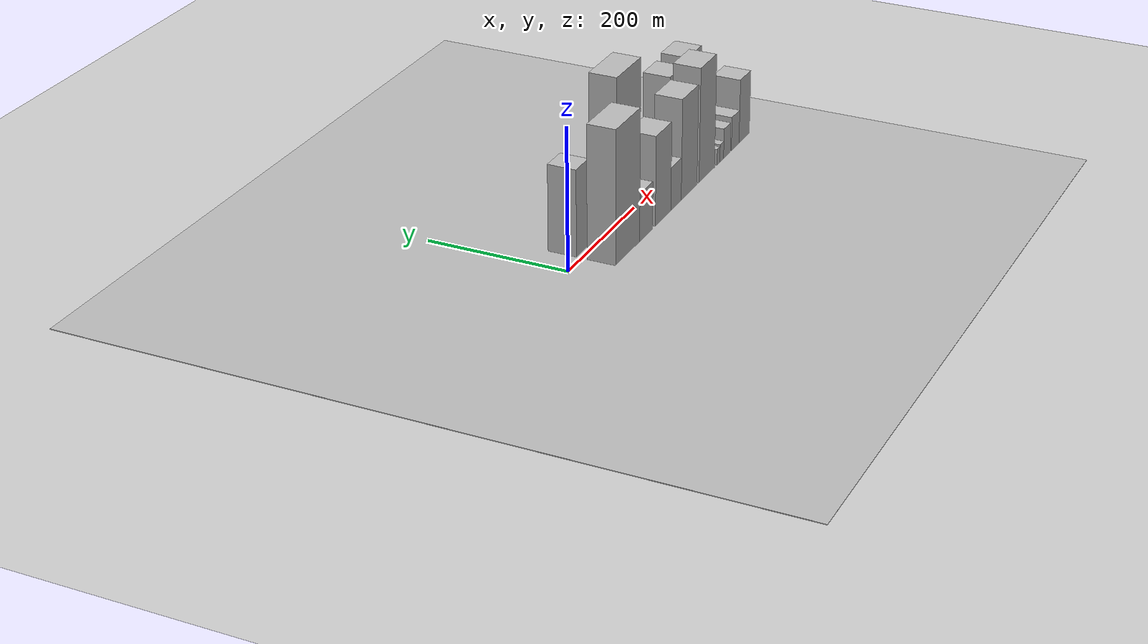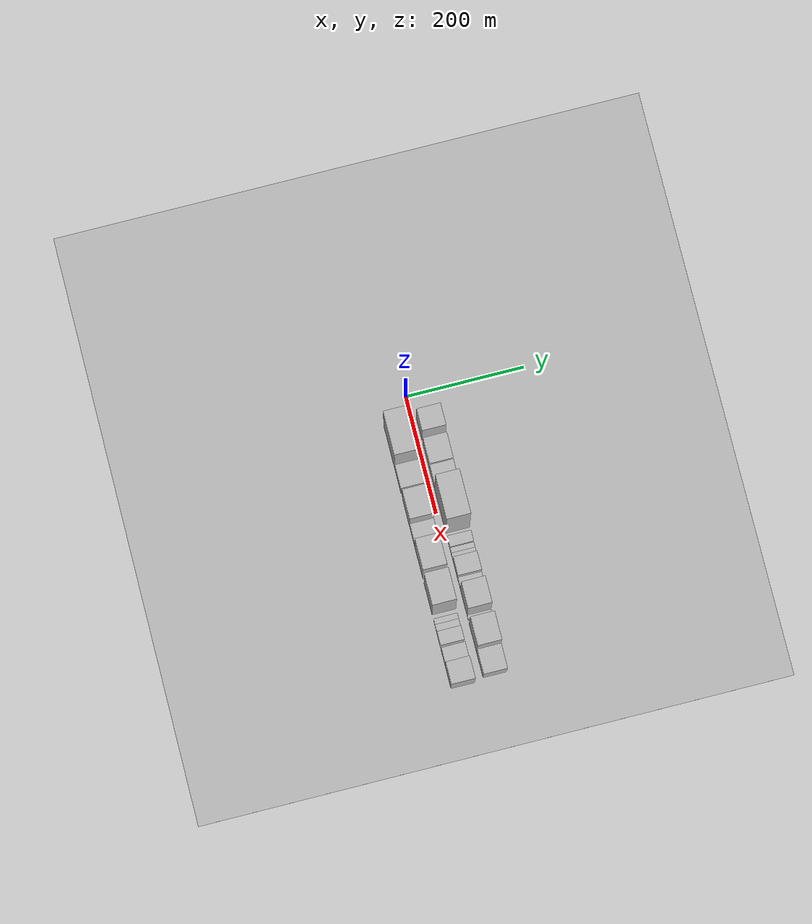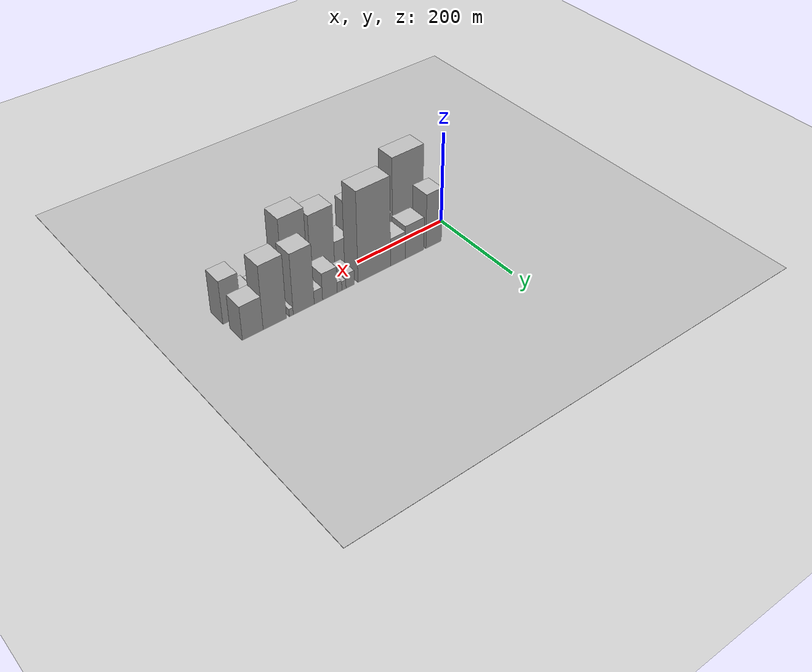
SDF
<?xml version="1.0" encoding="utf-8"?>

<sdf version="1.6">

   <world name="default">

      <gui fullscreen="0">

         <camera name="user_camera">

            <pose>-15 0 4.57585 0 0 0</pose>

            <view_controller>orbit</view_controller>

         </camera>

      </gui>

      <scene>

         <sky>

           <clouds>

             <speed>12</speed>

           </clouds>

         </sky>

         <ambient>0.4 0.4 0.4 1</ambient>

         <background>0.7 0.7 0.7 1</background>

         <shadows>1</shadows>

      </scene>

      <gravity>0 0 -9.8066</gravity>

      <magnetic_field>6e-06 2.3e-05 -4.2e-05</magnetic_field>

      <physics default="0" name="default_physics" type="ode">

         <ode>

            <solver>

               <type>quick</type>

               <iters>10</iters>

               <sor>1.0</sor>

               <use_dynamic_moi_rescaling>0</use_dynamic_moi_rescaling>

            </solver>

            <constraints>

               <cfm>0</cfm>

               <erp>0.2</erp>

               <contact_max_correcting_vel>100</contact_max_correcting_vel>

               <contact_surface_layer>0.001</contact_surface_layer>

            </constraints>

         </ode>

         <max_step_size>0.004</max_step_size>

         <real_time_factor>1</real_time_factor>

         <real_time_update_rate>250</real_time_update_rate>

      </physics>

      <light name="sun" type="directional">

         <cast_shadows>1</cast_shadows>

         <pose>0 0 10 0 0 0</pose>

         <diffuse>0.8 0.8 0.8 1</diffuse>

         <specular>0.2 0.2 0.2 1</specular>

         <attenuation>

            <range>1000</range>

            <constant>0.9</constant>

            <linear>0.01</linear>

            <quadratic>0.001</quadratic>

         </attenuation>

         <direction>-0.5 0.1 -0.9</direction>

      </light>

      <include>

         <name>ground_plane_1</name>

         <uri>model://HANNAS_ground_plane</uri>

         <pose>0 0 0  0 0 0</pose>

      </include>

      <include>

         <name>ground_plane_2</name>

         <uri>model://HANNAS_ground_plane</uri>

         <pose>100 0 0  0 0 0</pose>

      </include>

      <model name="building_1">

         <static>1</static>

         <pose frame="">58.5910 27.5000 0 0.000000 0.000000 1.570796</pose>

         <link name="link">

            <pose frame="">0 0 61.50 0 0 0</pose>

            <collision name="collision">

               <geometry>

                  <box>

                     <size>40.0000 37.1820 123.0000</size>

                  </box>

               </geometry>

               <max_contacts>10</max_contacts>

               <surface>

                  <contact>

                     <ode/>

                  </contact>

                  <bounce/>

                  <friction>

                     <torsional>

                        <ode/>

                     </torsional>

                     <ode/>

                  </friction>

               </surface>

            </collision>

            <visual name="visual">

               <cast_shadows>0</cast_shadows>

               <geometry>

                  <box>

                     <size>40.0000 37.1820 123.0000</size>

                  </box>

               </geometry>

               <material>

                  <script>

                     <uri>model://HANNAS_wall/materials/scripts</uri>

                     <uri>model://HANNAS_wall/materials/textures</uri>

                     <name>vrc/HANNAS_wall</name>

                  </script>

               </material>

            </visual>

            <self_collide>0</self_collide>

            <enable_wind>0</enable_wind>

            <kinematic>0</kinematic>

         </link>

      </model>

      <model name="building_2">

         <static>1</static>

         <pose frame="">104.1878 27.5000 0 0.000000 0.000000 1.570796</pose>

         <link name="link">

            <pose frame="">0 0 37.50 0 0 0</pose>

            <collision name="collision">

               <geometry>

                  <box>

                     <size>40.0000 44.0116 75.0000</size>

                  </box>

               </geometry>

               <max_contacts>10</max_contacts>

               <surface>

                  <contact>

                     <ode/>

                  </contact>

                  <bounce/>

                  <friction>

                     <torsional>

                        <ode/>

                     </torsional>

                     <ode/>

                  </friction>

               </surface>

            </collision>

            <visual name="visual">

               <cast_shadows>0</cast_shadows>

               <geometry>

                  <box>

                     <size>40.0000 44.0116 75.0000</size>

                  </box>

               </geometry>

               <material>

                  <script>

                     <uri>model://HANNAS_wall/materials/scripts</uri>

                     <uri>model://HANNAS_wall/materials/textures</uri>

                     <name>vrc/HANNAS_wall</name>

                  </script>

               </material>

            </visual>

            <self_collide>0</self_collide>

            <enable_wind>0</enable_wind>

            <kinematic>0</kinematic>

         </link>

      </model>

      <model name="building_3">

         <static>1</static>

         <pose frame="">143.5479 27.5000 0 0.000000 0.000000 1.570796</pose>

         <link name="link">

            <pose frame="">0 0 31.50 0 0 0</pose>

            <collision name="collision">

               <geometry>

                  <box>

                     <size>40.0000 34.7087 63.0000</size>

                  </box>

               </geometry>

               <max_contacts>10</max_contacts>

               <surface>

                  <contact>

                     <ode/>

                  </contact>

                  <bounce/>

                  <friction>

                     <torsional>

                        <ode/>

                     </torsional>

                     <ode/>

                  </friction>

               </surface>

            </collision>

            <visual name="visual">

               <cast_shadows>0</cast_shadows>

               <geometry>

                  <box>

                     <size>40.0000 34.7087 63.0000</size>

                  </box>

               </geometry>

               <material>

                  <script>

                     <uri>model://HANNAS_wall/materials/scripts</uri>

                     <uri>model://HANNAS_wall/materials/textures</uri>

                     <name>vrc/HANNAS_wall</name>

                  </script>

               </material>

            </visual>

            <self_collide>0</self_collide>

            <enable_wind>0</enable_wind>

            <kinematic>0</kinematic>

         </link>

      </model>

      <model name="building_4">

         <static>1</static>

         <pose frame="">197.8656 27.5000 0 0.000000 0.000000 1.570796</pose>

         <link name="link">

            <pose frame="">0 0 100.50 0 0 0</pose>

            <collision name="collision">

               <geometry>

                  <box>

                     <size>40.0000 73.9267 201.0000</size>

                  </box>

               </geometry>

               <max_contacts>10</max_contacts>

               <surface>

                  <contact>

                     <ode/>

                  </contact>

                  <bounce/>

                  <friction>

                     <torsional>

                        <ode/>

                     </torsional>

                     <ode/>

                  </friction>

               </surface>

            </collision>

            <visual name="visual">

               <cast_shadows>0</cast_shadows>

               <geometry>

                  <box>

                     <size>40.0000 73.9267 201.0000</size>

                  </box>

               </geometry>

               <material>

                  <script>

                     <uri>model://HANNAS_wall/materials/scripts</uri>

                     <uri>model://HANNAS_wall/materials/textures</uri>

                     <name>vrc/HANNAS_wall</name>

                  </script>

               </material>

            </visual>

            <self_collide>0</self_collide>

            <enable_wind>0</enable_wind>

            <kinematic>0</kinematic>

         </link>

      </model>

      <model name="building_5">

         <static>1</static>

         <pose frame="">252.2206 27.5000 0 0.000000 0.000000 1.570796</pose>

         <link name="link">

            <pose frame="">0 0 16.50 0 0 0</pose>

            <collision name="collision">

               <geometry>

                  <box>

                     <size>40.0000 18.7832 33.0000</size>

                  </box>

               </geometry>

               <max_contacts>10</max_contacts>

               <surface>

                  <contact>

                     <ode/>

                  </contact>

                  <bounce/>

                  <friction>

                     <torsional>

                        <ode/>

                     </torsional>

                     <ode/>

                  </friction>

               </surface>

            </collision>

            <visual name="visual">

               <cast_shadows>0</cast_shadows>

               <geometry>

                  <box>

                     <size>40.0000 18.7832 33.0000</size>

                  </box>

               </geometry>

               <material>

                  <script>

                     <uri>model://HANNAS_wall/materials/scripts</uri>

                     <uri>model://HANNAS_wall/materials/textures</uri>

                     <name>vrc/HANNAS_wall</name>

                  </script>

               </material>

            </visual>

            <self_collide>0</self_collide>

            <enable_wind>0</enable_wind>

            <kinematic>0</kinematic>

         </link>

      </model>

      <model name="building_6">

         <static>1</static>

         <pose frame="">266.1803 27.5000 0 0.000000 0.000000 1.570796</pose>

         <link name="link">

            <pose frame="">0 0 10.50 0 0 0</pose>

            <collision name="collision">

               <geometry>

                  <box>

                     <size>40.0000 9.1361 21.0000</size>

                  </box>

               </geometry>

               <max_contacts>10</max_contacts>

               <surface>

                  <contact>

                     <ode/>

                  </contact>

                  <bounce/>

                  <friction>

                     <torsional>

                        <ode/>

                     </torsional>

                     <ode/>

                  </friction>

               </surface>

            </collision>

            <visual name="visual">

               <cast_shadows>0</cast_shadows>

               <geometry>

                  <box>

                     <size>40.0000 9.1361 21.0000</size>

                  </box>

               </geometry>

               <material>

                  <script>

                     <uri>model://HANNAS_wall/materials/scripts</uri>

                     <uri>model://HANNAS_wall/materials/textures</uri>

                     <name>vrc/HANNAS_wall</name>

                  </script>

               </material>

            </visual>

            <self_collide>0</self_collide>

            <enable_wind>0</enable_wind>

            <kinematic>0</kinematic>

         </link>

      </model>

      <model name="building_7">

         <static>1</static>

         <pose frame="">275.8593 27.5000 0 0.000000 0.000000 1.570796</pose>

         <link name="link">

            <pose frame="">0 0 12.00 0 0 0</pose>

            <collision name="collision">

               <geometry>

                  <box>

                     <size>40.0000 10.2219 24.0000</size>

                  </box>

               </geometry>

               <max_contacts>10</max_contacts>

               <surface>

                  <contact>

                     <ode/>

                  </contact>

                  <bounce/>

                  <friction>

                     <torsional>

                        <ode/>

                     </torsional>

                     <ode/>

                  </friction>

               </surface>

            </collision>

            <visual name="visual">

               <cast_shadows>0</cast_shadows>

               <geometry>

                  <box>

                     <size>40.0000 10.2219 24.0000</size>

                  </box>

               </geometry>

               <material>

                  <script>

                     <uri>model://HANNAS_wall/materials/scripts</uri>

                     <uri>model://HANNAS_wall/materials/textures</uri>

                     <name>vrc/HANNAS_wall</name>

                  </script>

               </material>

            </visual>

            <self_collide>0</self_collide>

            <enable_wind>0</enable_wind>

            <kinematic>0</kinematic>

         </link>

      </model>

      <model name="building_8">

         <static>1</static>

         <pose frame="">296.8819 27.5000 0 0.000000 0.000000 1.570796</pose>

         <link name="link">

            <pose frame="">0 0 30.00 0 0 0</pose>

            <collision name="collision">

               <geometry>

                  <box>

                     <size>40.0000 31.8234 60.0000</size>

                  </box>

               </geometry>

               <max_contacts>10</max_contacts>

               <surface>

                  <contact>

                     <ode/>

                  </contact>

                  <bounce/>

                  <friction>

                     <torsional>

                        <ode/>

                     </torsional>

                     <ode/>

                  </friction>

               </surface>

            </collision>

            <visual name="visual">

               <cast_shadows>0</cast_shadows>

               <geometry>

                  <box>

                     <size>40.0000 31.8234 60.0000</size>

                  </box>

               </geometry>

               <material>

                  <script>

                     <uri>model://HANNAS_wall/materials/scripts</uri>

                     <uri>model://HANNAS_wall/materials/textures</uri>

                     <name>vrc/HANNAS_wall</name>

                  </script>

               </material>

            </visual>

            <self_collide>0</self_collide>

            <enable_wind>0</enable_wind>

            <kinematic>0</kinematic>

         </link>

      </model>

      <model name="building_9">

         <static>1</static>

         <pose frame="">321.7833 27.5000 0 0.000000 0.000000 1.570796</pose>

         <link name="link">

            <pose frame="">0 0 15.00 0 0 0</pose>

            <collision name="collision">

               <geometry>

                  <box>

                     <size>40.0000 17.9794 30.0000</size>

                  </box>

               </geometry>

               <max_contacts>10</max_contacts>

               <surface>

                  <contact>

                     <ode/>

                  </contact>

                  <bounce/>

                  <friction>

                     <torsional>

                        <ode/>

                     </torsional>

                     <ode/>

                  </friction>

               </surface>

            </collision>

            <visual name="visual">

               <cast_shadows>0</cast_shadows>

               <geometry>

                  <box>

                     <size>40.0000 17.9794 30.0000</size>

                  </box>

               </geometry>

               <material>

                  <script>

                     <uri>model://HANNAS_wall/materials/scripts</uri>

                     <uri>model://HANNAS_wall/materials/textures</uri>

                     <name>vrc/HANNAS_wall</name>

                  </script>

               </material>

            </visual>

            <self_collide>0</self_collide>

            <enable_wind>0</enable_wind>

            <kinematic>0</kinematic>

         </link>

      </model>

      <model name="building_10">

         <static>1</static>

         <pose frame="">352.9895 27.5000 0 0.000000 0.000000 1.570796</pose>

         <link name="link">

            <pose frame="">0 0 67.50 0 0 0</pose>

            <collision name="collision">

               <geometry>

                  <box>

                     <size>40.0000 44.4329 135.0000</size>

                  </box>

               </geometry>

               <max_contacts>10</max_contacts>

               <surface>

                  <contact>

                     <ode/>

                  </contact>

                  <bounce/>

                  <friction>

                     <torsional>

                        <ode/>

                     </torsional>

                     <ode/>

                  </friction>

               </surface>

            </collision>

            <visual name="visual">

               <cast_shadows>0</cast_shadows>

               <geometry>

                  <box>

                     <size>40.0000 44.4329 135.0000</size>

                  </box>

               </geometry>

               <material>

                  <script>

                     <uri>model://HANNAS_wall/materials/scripts</uri>

                     <uri>model://HANNAS_wall/materials/textures</uri>

                     <name>vrc/HANNAS_wall</name>

                  </script>

               </material>

            </visual>

            <self_collide>0</self_collide>

            <enable_wind>0</enable_wind>

            <kinematic>0</kinematic>

         </link>

      </model>

      <model name="building_11">

         <static>1</static>

         <pose frame="">379.2676 27.5000 0 0.000000 0.000000 1.570796</pose>

         <link name="link">

            <pose frame="">0 0 9.00 0 0 0</pose>

            <collision name="collision">

               <geometry>

                  <box>

                     <size>40.0000 8.1234 18.0000</size>

                  </box>

               </geometry>

               <max_contacts>10</max_contacts>

               <surface>

                  <contact>

                     <ode/>

                  </contact>

                  <bounce/>

                  <friction>

                     <torsional>

                        <ode/>

                     </torsional>

                     <ode/>

                  </friction>

               </surface>

            </collision>

            <visual name="visual">

               <cast_shadows>0</cast_shadows>

               <geometry>

                  <box>

                     <size>40.0000 8.1234 18.0000</size>

                  </box>

               </geometry>

               <material>

                  <script>

                     <uri>model://HANNAS_wall/materials/scripts</uri>

                     <uri>model://HANNAS_wall/materials/textures</uri>

                     <name>vrc/HANNAS_wall</name>

                  </script>

               </material>

            </visual>

            <self_collide>0</self_collide>

            <enable_wind>0</enable_wind>

            <kinematic>0</kinematic>

         </link>

      </model>

      <model name="building_12">

         <static>1</static>

         <pose frame="">413.3480 27.5000 0 0.000000 0.000000 1.570796</pose>

         <link name="link">

            <pose frame="">0 0 70.50 0 0 0</pose>

            <collision name="collision">

               <geometry>

                  <box>

                     <size>40.0000 48.0373 141.0000</size>

                  </box>

               </geometry>

               <max_contacts>10</max_contacts>

               <surface>

                  <contact>

                     <ode/>

                  </contact>

                  <bounce/>

                  <friction>

                     <torsional>

                        <ode/>

                     </torsional>

                     <ode/>

                  </friction>

               </surface>

            </collision>

            <visual name="visual">

               <cast_shadows>0</cast_shadows>

               <geometry>

                  <box>

                     <size>40.0000 48.0373 141.0000</size>

                  </box>

               </geometry>

               <material>

                  <script>

                     <uri>model://HANNAS_wall/materials/scripts</uri>

                     <uri>model://HANNAS_wall/materials/textures</uri>

                     <name>vrc/HANNAS_wall</name>

                  </script>

               </material>

            </visual>

            <self_collide>0</self_collide>

            <enable_wind>0</enable_wind>

            <kinematic>0</kinematic>

         </link>

      </model>

      <model name="building_13">

         <static>1</static>

         <pose frame="">458.3385 27.5000 0 0.000000 0.000000 1.570796</pose>

         <link name="link">

            <pose frame="">0 0 37.50 0 0 0</pose>

            <collision name="collision">

               <geometry>

                  <box>

                     <size>40.0000 41.9438 75.0000</size>

                  </box>

               </geometry>

               <max_contacts>10</max_contacts>

               <surface>

                  <contact>

                     <ode/>

                  </contact>

                  <bounce/>

                  <friction>

                     <torsional>

                        <ode/>

                     </torsional>

                     <ode/>

                  </friction>

               </surface>

            </collision>

            <visual name="visual">

               <cast_shadows>0</cast_shadows>

               <geometry>

                  <box>

                     <size>40.0000 41.9438 75.0000</size>

                  </box>

               </geometry>

               <material>

                  <script>

                     <uri>model://HANNAS_wall/materials/scripts</uri>

                     <uri>model://HANNAS_wall/materials/textures</uri>

                     <name>vrc/HANNAS_wall</name>

                  </script>

               </material>

            </visual>

            <self_collide>0</self_collide>

            <enable_wind>0</enable_wind>

            <kinematic>0</kinematic>

         </link>

      </model>

      <model name="building_14">

         <static>1</static>

         <pose frame="">76.5968 -27.5000 0 0.000000 0.000000 1.570796</pose>

         <link name="link">

            <pose frame="">0 0 94.50 0 0 0</pose>

            <collision name="collision">

               <geometry>

                  <box>

                     <size>40.0000 73.1936 189.0000</size>

                  </box>

               </geometry>

               <max_contacts>10</max_contacts>

               <surface>

                  <contact>

                     <ode/>

                  </contact>

                  <bounce/>

                  <friction>

                     <torsional>

                        <ode/>

                     </torsional>

                     <ode/>

                  </friction>

               </surface>

            </collision>

            <visual name="visual">

               <cast_shadows>0</cast_shadows>

               <geometry>

                  <box>

                     <size>40.0000 73.1936 189.0000</size>

                  </box>

               </geometry>

               <material>

                  <script>

                     <uri>model://HANNAS_wall/materials/scripts</uri>

                     <uri>model://HANNAS_wall/materials/textures</uri>

                     <name>vrc/HANNAS_wall</name>

                  </script>

               </material>

            </visual>

            <self_collide>0</self_collide>

            <enable_wind>0</enable_wind>

            <kinematic>0</kinematic>

         </link>

      </model>

      <model name="building_15">

         <static>1</static>

         <pose frame="">133.2956 -27.5000 0 0.000000 0.000000 1.570796</pose>

         <link name="link">

            <pose frame="">0 0 34.50 0 0 0</pose>

            <collision name="collision">

               <geometry>

                  <box>

                     <size>40.0000 40.2040 69.0000</size>

                  </box>

               </geometry>

               <max_contacts>10</max_contacts>

               <surface>

                  <contact>

                     <ode/>

                  </contact>

                  <bounce/>

                  <friction>

                     <torsional>

                        <ode/>

                     </torsional>

                     <ode/>

                  </friction>

               </surface>

            </collision>

            <visual name="visual">

               <cast_shadows>0</cast_shadows>

               <geometry>

                  <box>

                     <size>40.0000 40.2040 69.0000</size>

                  </box>

               </geometry>

               <material>

                  <script>

                     <uri>model://HANNAS_wall/materials/scripts</uri>

                     <uri>model://HANNAS_wall/materials/textures</uri>

                     <name>vrc/HANNAS_wall</name>

                  </script>

               </material>

            </visual>

            <self_collide>0</self_collide>

            <enable_wind>0</enable_wind>

            <kinematic>0</kinematic>

         </link>

      </model>

      <model name="building_16">

         <static>1</static>

         <pose frame="">187.2038 -27.5000 0 0.000000 0.000000 1.570796</pose>

         <link name="link">

            <pose frame="">0 0 64.50 0 0 0</pose>

            <collision name="collision">

               <geometry>

                  <box>

                     <size>40.0000 49.6124 129.0000</size>

                  </box>

               </geometry>

               <max_contacts>10</max_contacts>

               <surface>

                  <contact>

                     <ode/>

                  </contact>

                  <bounce/>

                  <friction>

                     <torsional>

                        <ode/>

                     </torsional>

                     <ode/>

                  </friction>

               </surface>

            </collision>

            <visual name="visual">

               <cast_shadows>0</cast_shadows>

               <geometry>

                  <box>

                     <size>40.0000 49.6124 129.0000</size>

                  </box>

               </geometry>

               <material>

                  <script>

                     <uri>model://HANNAS_wall/materials/scripts</uri>

                     <uri>model://HANNAS_wall/materials/textures</uri>

                     <name>vrc/HANNAS_wall</name>

                  </script>

               </material>

            </visual>

            <self_collide>0</self_collide>

            <enable_wind>0</enable_wind>

            <kinematic>0</kinematic>

         </link>

      </model>

      <model name="building_17">

         <static>1</static>

         <pose frame="">229.1055 -27.5000 0 0.000000 0.000000 1.570796</pose>

         <link name="link">

            <pose frame="">0 0 31.50 0 0 0</pose>

            <collision name="collision">

               <geometry>

                  <box>

                     <size>40.0000 34.1910 63.0000</size>

                  </box>

               </geometry>

               <max_contacts>10</max_contacts>

               <surface>

                  <contact>

                     <ode/>

                  </contact>

                  <bounce/>

                  <friction>

                     <torsional>

                        <ode/>

                     </torsional>

                     <ode/>

                  </friction>

               </surface>

            </collision>

            <visual name="visual">

               <cast_shadows>0</cast_shadows>

               <geometry>

                  <box>

                     <size>40.0000 34.1910 63.0000</size>

                  </box>

               </geometry>

               <material>

                  <script>

                     <uri>model://HANNAS_wall/materials/scripts</uri>

                     <uri>model://HANNAS_wall/materials/textures</uri>

                     <name>vrc/HANNAS_wall</name>

                  </script>

               </material>

            </visual>

            <self_collide>0</self_collide>

            <enable_wind>0</enable_wind>

            <kinematic>0</kinematic>

         </link>

      </model>

      <model name="building_18">

         <static>1</static>

         <pose frame="">272.4776 -27.5000 0 0.000000 0.000000 1.570796</pose>

         <link name="link">

            <pose frame="">0 0 73.50 0 0 0</pose>

            <collision name="collision">

               <geometry>

                  <box>

                     <size>40.0000 52.5531 147.0000</size>

                  </box>

               </geometry>

               <max_contacts>10</max_contacts>

               <surface>

                  <contact>

                     <ode/>

                  </contact>

                  <bounce/>

                  <friction>

                     <torsional>

                        <ode/>

                     </torsional>

                     <ode/>

                  </friction>

               </surface>

            </collision>

            <visual name="visual">

               <cast_shadows>0</cast_shadows>

               <geometry>

                  <box>

                     <size>40.0000 52.5531 147.0000</size>

                  </box>

               </geometry>

               <material>

                  <script>

                     <uri>model://HANNAS_wall/materials/scripts</uri>

                     <uri>model://HANNAS_wall/materials/textures</uri>

                     <name>vrc/HANNAS_wall</name>

                  </script>

               </material>

            </visual>

            <self_collide>0</self_collide>

            <enable_wind>0</enable_wind>

            <kinematic>0</kinematic>

         </link>

      </model>

      <model name="building_19">

         <static>1</static>

         <pose frame="">332.4324 -27.5000 0 0.000000 0.000000 1.570796</pose>

         <link name="link">

            <pose frame="">0 0 84.00 0 0 0</pose>

            <collision name="collision">

               <geometry>

                  <box>

                     <size>40.0000 53.3566 168.0000</size>

                  </box>

               </geometry>

               <max_contacts>10</max_contacts>

               <surface>

                  <contact>

                     <ode/>

                  </contact>

                  <bounce/>

                  <friction>

                     <torsional>

                        <ode/>

                     </torsional>

                     <ode/>

                  </friction>

               </surface>

            </collision>

            <visual name="visual">

               <cast_shadows>0</cast_shadows>

               <geometry>

                  <box>

                     <size>40.0000 53.3566 168.0000</size>

                  </box>

               </geometry>

               <material>

                  <script>

                     <uri>model://HANNAS_wall/materials/scripts</uri>

                     <uri>model://HANNAS_wall/materials/textures</uri>

                     <name>vrc/HANNAS_wall</name>

                  </script>

               </material>

            </visual>

            <self_collide>0</self_collide>

            <enable_wind>0</enable_wind>

            <kinematic>0</kinematic>

         </link>

      </model>

      <model name="building_20">

         <static>1</static>

         <pose frame="">373.0162 -27.5000 0 0.000000 0.000000 1.570796</pose>

         <link name="link">

            <pose frame="">0 0 12.00 0 0 0</pose>

            <collision name="collision">

               <geometry>

                  <box>

                     <size>40.0000 9.8111 24.0000</size>

                  </box>

               </geometry>

               <max_contacts>10</max_contacts>

               <surface>

                  <contact>

                     <ode/>

                  </contact>

                  <bounce/>

                  <friction>

                     <torsional>

                        <ode/>

                     </torsional>

                     <ode/>

                  </friction>

               </surface>

            </collision>

            <visual name="visual">

               <cast_shadows>0</cast_shadows>

               <geometry>

                  <box>

                     <size>40.0000 9.8111 24.0000</size>

                  </box>

               </geometry>

               <material>

                  <script>

                     <uri>model://HANNAS_wall/materials/scripts</uri>

                     <uri>model://HANNAS_wall/materials/textures</uri>

                     <name>vrc/HANNAS_wall</name>

                  </script>

               </material>

            </visual>

            <self_collide>0</self_collide>

            <enable_wind>0</enable_wind>

            <kinematic>0</kinematic>

         </link>

      </model>

      <model name="building_21">

         <static>1</static>

         <pose frame="">384.4811 -27.5000 0 0.000000 0.000000 1.570796</pose>

         <link name="link">

            <pose frame="">0 0 13.50 0 0 0</pose>

            <collision name="collision">

               <geometry>

                  <box>

                     <size>40.0000 13.1187 27.0000</size>

                  </box>

               </geometry>

               <max_contacts>10</max_contacts>

               <surface>

                  <contact>

                     <ode/>

                  </contact>

                  <bounce/>

                  <friction>

                     <torsional>

                        <ode/>

                     </torsional>

                     <ode/>

                  </friction>

               </surface>

            </collision>

            <visual name="visual">

               <cast_shadows>0</cast_shadows>

               <geometry>

                  <box>

                     <size>40.0000 13.1187 27.0000</size>

                  </box>

               </geometry>

               <material>

                  <script>

                     <uri>model://HANNAS_wall/materials/scripts</uri>

                     <uri>model://HANNAS_wall/materials/textures</uri>

                     <name>vrc/HANNAS_wall</name>

                  </script>

               </material>

            </visual>

            <self_collide>0</self_collide>

            <enable_wind>0</enable_wind>

            <kinematic>0</kinematic>

         </link>

      </model>

      <model name="building_22">

         <static>1</static>

         <pose frame="">402.8111 -27.5000 0 0.000000 0.000000 1.570796</pose>

         <link name="link">

            <pose frame="">0 0 22.50 0 0 0</pose>

            <collision name="collision">

               <geometry>

                  <box>

                     <size>40.0000 23.5412 45.0000</size>

                  </box>

               </geometry>

               <max_contacts>10</max_contacts>

               <surface>

                  <contact>

                     <ode/>

                  </contact>

                  <bounce/>

                  <friction>

                     <torsional>

                        <ode/>

                     </torsional>

                     <ode/>

                  </friction>

               </surface>

            </collision>

            <visual name="visual">

               <cast_shadows>0</cast_shadows>

               <geometry>

                  <box>

                     <size>40.0000 23.5412 45.0000</size>

                  </box>

               </geometry>

               <material>

                  <script>

                     <uri>model://HANNAS_wall/materials/scripts</uri>

                     <uri>model://HANNAS_wall/materials/textures</uri>

                     <name>vrc/HANNAS_wall</name>

                  </script>

               </material>

            </visual>

            <self_collide>0</self_collide>

            <enable_wind>0</enable_wind>

            <kinematic>0</kinematic>

         </link>

      </model>

      <model name="building_23">

         <static>1</static>

         <pose frame="">432.3562 -27.5000 0 0.000000 0.000000 1.570796</pose>

         <link name="link">

            <pose frame="">0 0 25.50 0 0 0</pose>

            <collision name="collision">

               <geometry>

                  <box>

                     <size>40.0000 27.5490 51.0000</size>

                  </box>

               </geometry>

               <max_contacts>10</max_contacts>

               <surface>

                  <contact>

                     <ode/>

                  </contact>

                  <bounce/>

                  <friction>

                     <torsional>

                        <ode/>

                     </torsional>

                     <ode/>

                  </friction>

               </surface>

            </collision>

            <visual name="visual">

               <cast_shadows>0</cast_shadows>

               <geometry>

                  <box>

                     <size>40.0000 27.5490 51.0000</size>

                  </box>

               </geometry>

               <material>

                  <script>

                     <uri>model://HANNAS_wall/materials/scripts</uri>

                     <uri>model://HANNAS_wall/materials/textures</uri>

                     <name>vrc/HANNAS_wall</name>

                  </script>

               </material>

            </visual>

            <self_collide>0</self_collide>

            <enable_wind>0</enable_wind>

            <kinematic>0</kinematic>

         </link>

      </model>

      <model name="building_24">

         <static>1</static>

         <pose frame="">464.9122 -27.5000 0 0.000000 0.000000 1.570796</pose>

         <link name="link">

            <pose frame="">0 0 48.00 0 0 0</pose>

            <collision name="collision">

               <geometry>

                  <box>

                     <size>40.0000 37.5631 96.0000</size>

                  </box>

               </geometry>

               <max_contacts>10</max_contacts>

               <surface>

                  <contact>

                     <ode/>

                  </contact>

                  <bounce/>

                  <friction>

                     <torsional>

                        <ode/>

                     </torsional>

                     <ode/>

                  </friction>

               </surface>

            </collision>

            <visual name="visual">

               <cast_shadows>0</cast_shadows>

               <geometry>

                  <box>

                     <size>40.0000 37.5631 96.0000</size>

                  </box>

               </geometry>

               <material>

                  <script>

                     <uri>model://HANNAS_wall/materials/scripts</uri>

                     <uri>model://HANNAS_wall/materials/textures</uri>

                     <name>vrc/HANNAS_wall</name>

                  </script>

               </material>

            </visual>

            <self_collide>0</self_collide>

            <enable_wind>0</enable_wind>

            <kinematic>0</kinematic>

         </link>

      </model>

   </world>

</sdf>

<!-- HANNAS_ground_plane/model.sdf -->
<sdf version="1.4">
<model name="HANNAS_ground_plane">
  <static>true</static>
    <link name="link">
      <collision name="collision">
        <geometry>
          <plane>
            <normal>0 0 1</normal>
            <size>1000 1000</size>
          </plane>
        </geometry>
        <surface>
          <friction>
            <ode>
              <mu>100</mu>
              <mu2>50</mu2>
            </ode>
          </friction>
        </surface>
      </collision>
      <visual name="visual">
        <cast_shadows>false</cast_shadows>
        <geometry>
          <plane>
            <normal>0 0 1</normal>
            <size>1000 1000</size>
          </plane>
        </geometry>
        <material>
          <script>
            <uri>model://HANNAS_ground_plane/materials/scripts/HANNAS_ground_plane.material</uri>
	    <uri>model://HANNAS_ground_plane/materials/textures</uri>
            <name>HANNASGroundPlane/Image</name>
          </script>
        </material>
      </visual>
    </link>
  </model>
</sdf>
